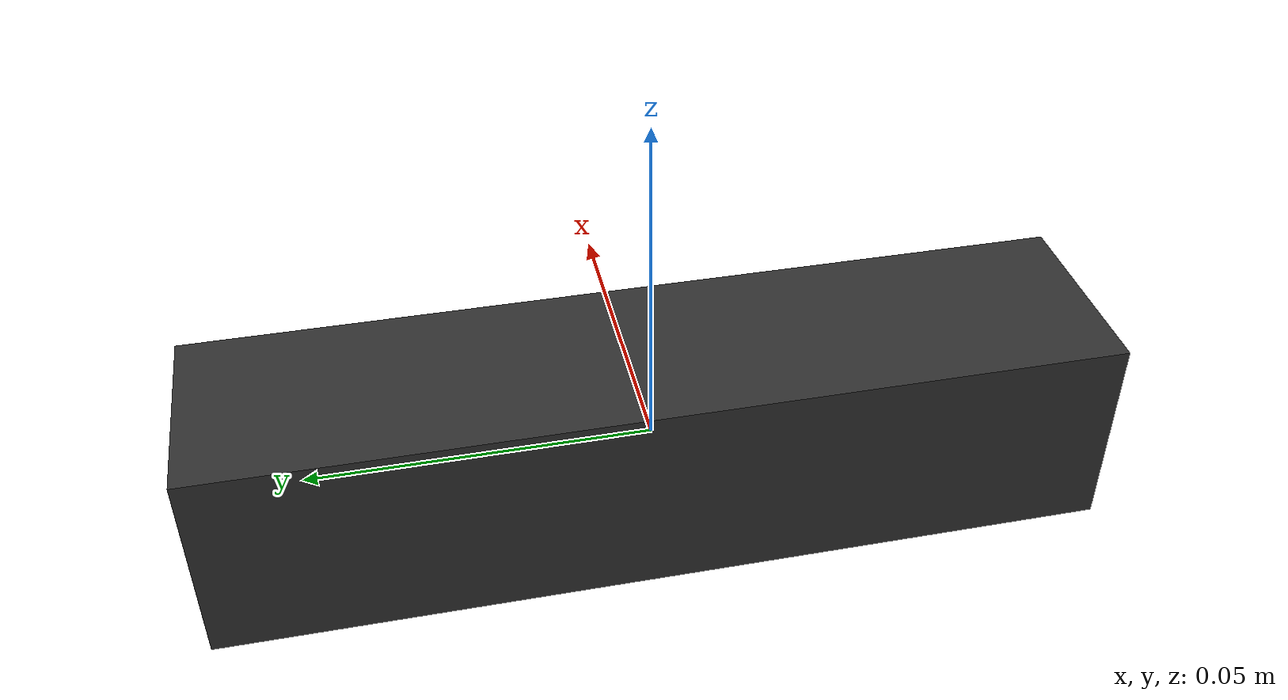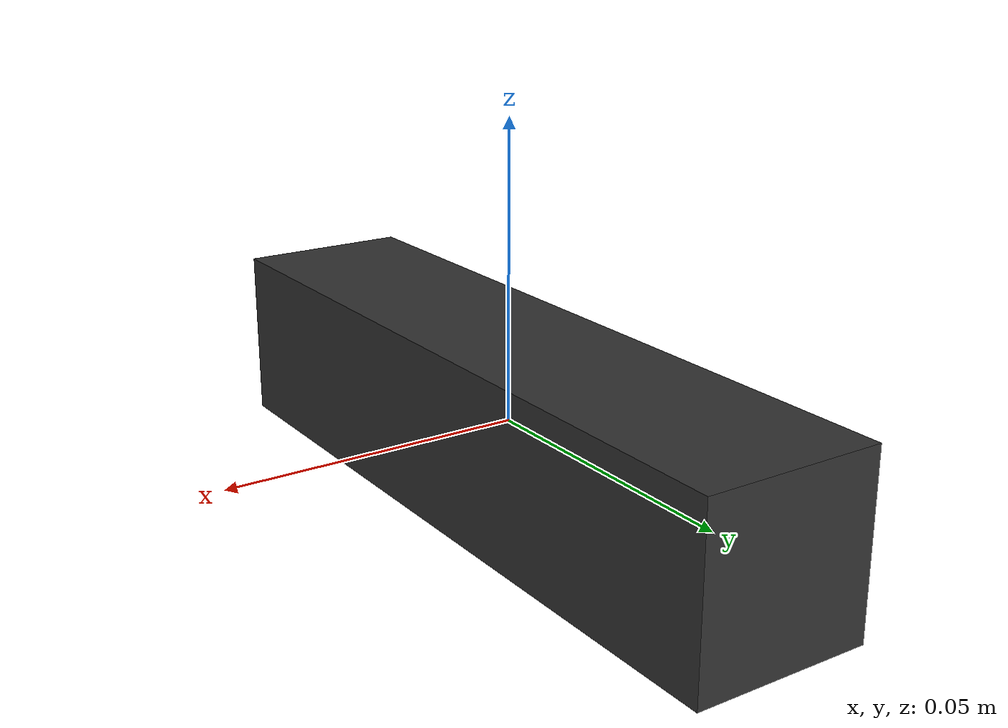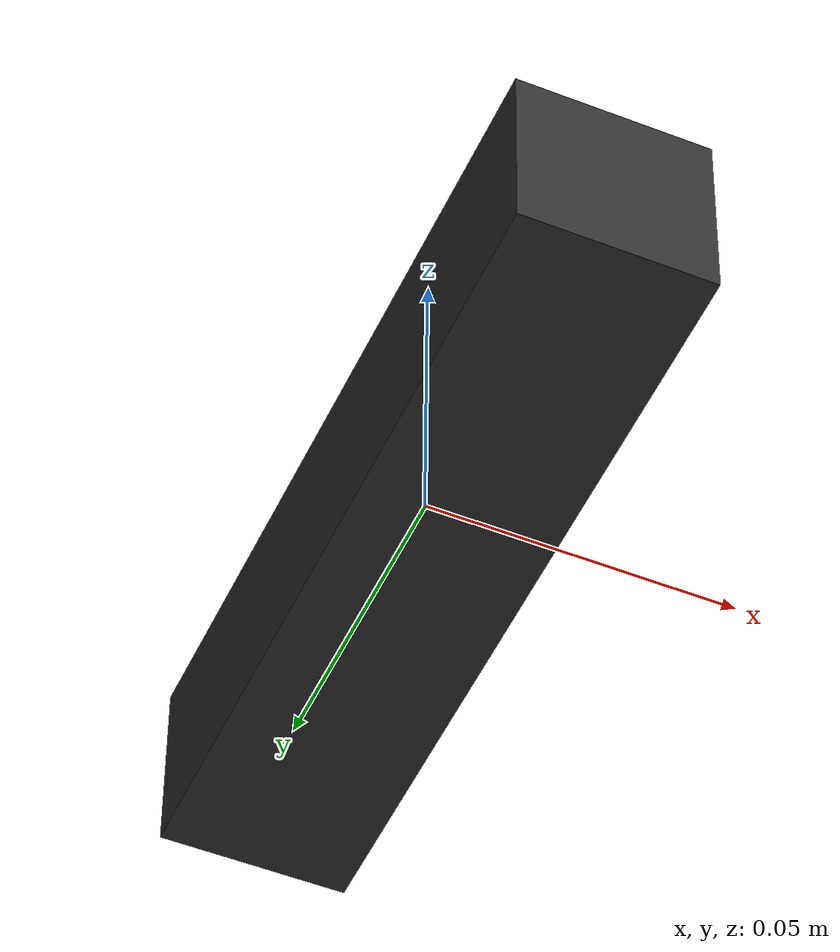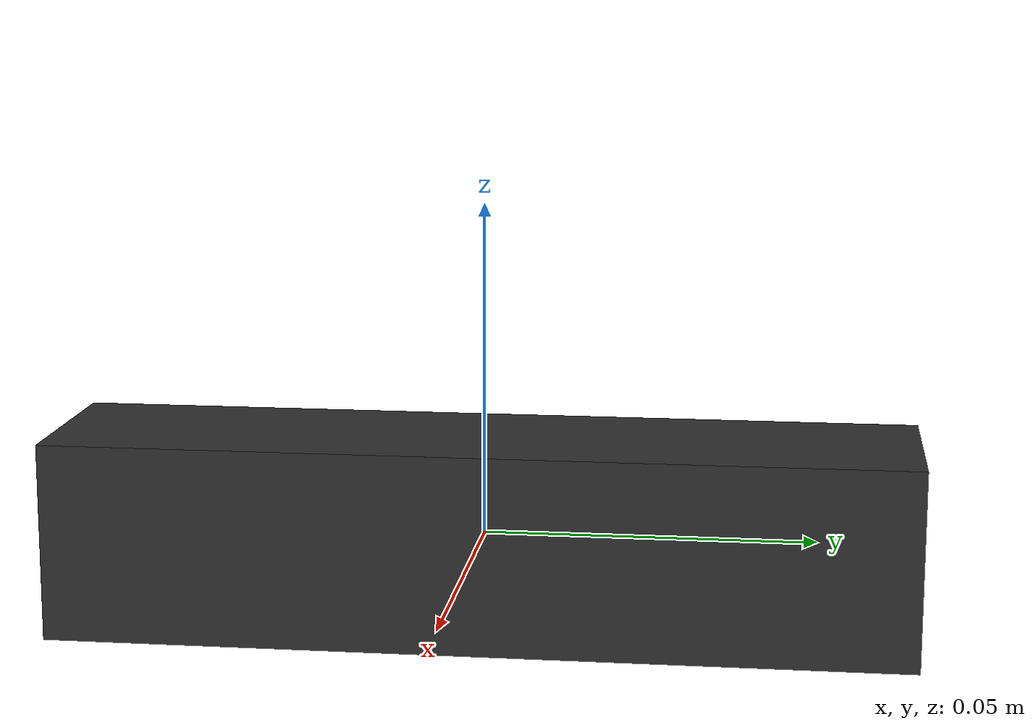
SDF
<?xml version="1.0" ?>
<sdf version="1.6">
  <model name="depth_camera">
    <static>true</static>
    <link name="camera_link"> <visual name="visual">
        <geometry><box><size>0.03 0.13 0.03</size></box></geometry> <material><ambient>0.2 0.2 0.2 1.0</ambient></material>
      </visual>
      <collision name="collision">
        <geometry><box><size>0.03 0.13 0.03</size></box></geometry>
      </collision>

      <sensor name="gemini_335" type="depth">
        <always_on>true</always_on>
        <update_rate>30.0</update_rate>
        <camera>
          <horizontal_fov>1.58825</horizontal_fov>
          <image>
            <width>640</width> <height>480</height>
            <format>R8G8B8</format>
          </image>
          <clip>
            <near>0.25</near>
            <far>2.5</far>
          </clip>
        </camera>
        <plugin name="gemini_335_controller" filename="libgazebo_ros_camera.so">
          <ros>
            <namespace>camera</namespace>
            <remapping>image_raw:=color/image_raw</remapping>
            <remapping>depth/image_raw:=depth/image_raw</remapping>
            <remapping>points:=depth/color/points</remapping>
          </ros>
          <camera_name>gemini_335</camera_name>
          <frame_name>camera_depth_optical_frame</frame_name>
          <min_depth>0.25</min_depth>
          <max_depth>2.5</max_depth>
        </plugin>
      </sensor>
    </link>
  </model>
</sdf>
